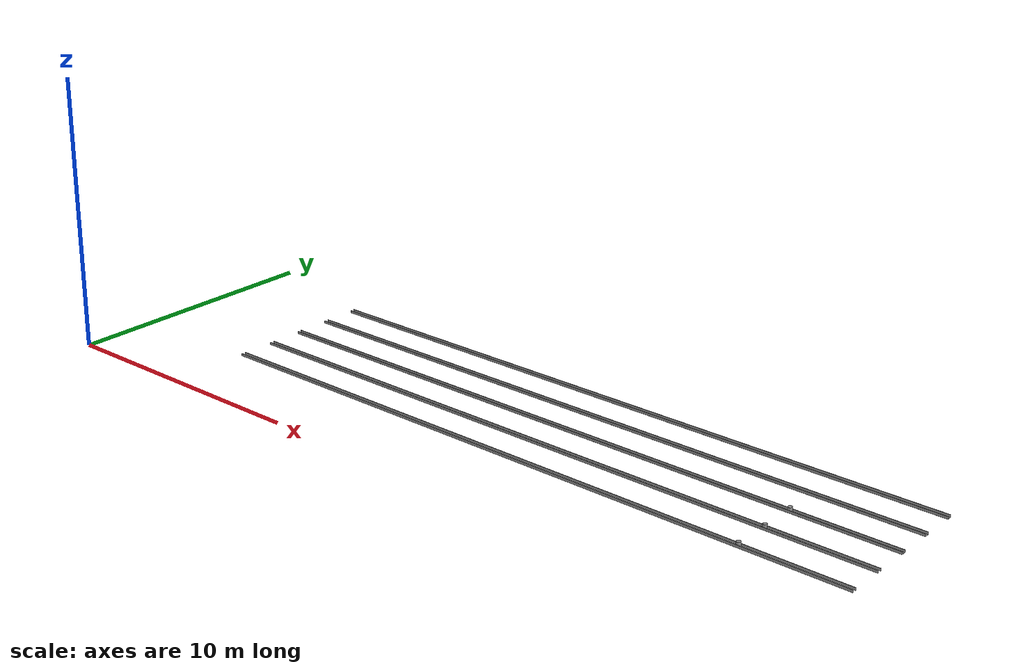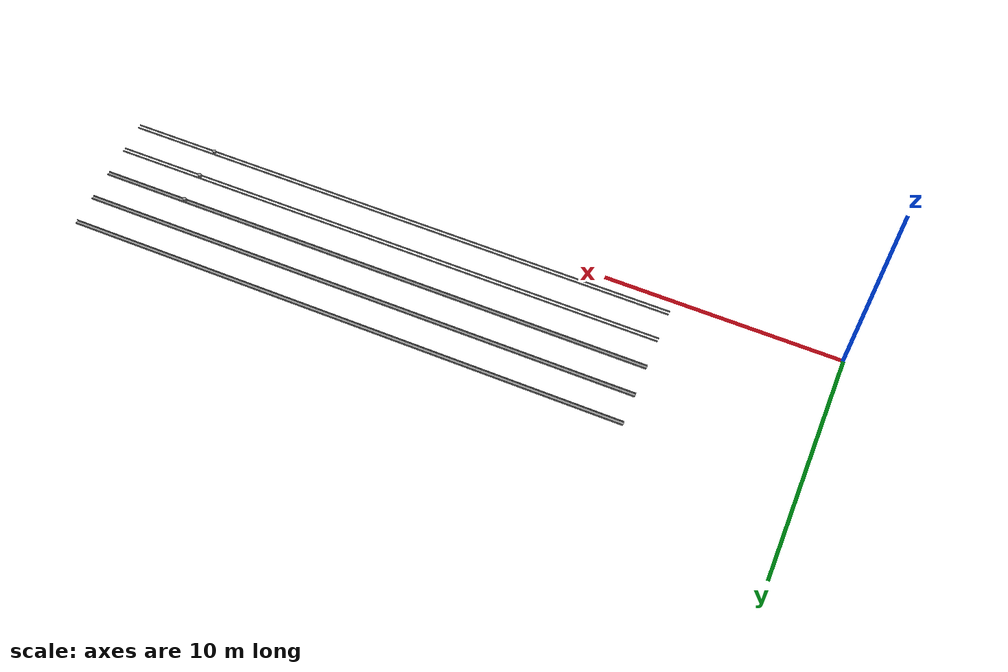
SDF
<sdf version="1.4">
 <world name="default">
  <model name="tray_7">
   <static>1</static>
   <link name="link_0">
    <collision name="collision"><geometry><box><size>23.620 0.15 0.005</size></box></geometry></collision>
    <visual name="visual">
     <geometry><box><size>23.620 0.15 0.005</size></box></geometry>
     <material>
      <script><uri>file://media/materials/scripts/gazebo.material</uri><name>Gazebo/Grey</name></script>
      <emissive>0 0 0 1</emissive>
      <shader type="vertex"><normal_map>__default__</normal_map></shader>
      <specular>0.01 0.01 0.01 1</specular>
      <lighting>1</lighting>
      <ambient>0.7 0.7 0.7 1</ambient>
      <diffuse>0.3 0.3 0.3 1</diffuse>
     </material>
    </visual>
    <pose>18.760 3.960 1.14965 0.0 0.0 0.0</pose>
   </link>
  </model>
  <model name="tray_8">
   <static>1</static>
   <link name="link_0">
    <collision name="collision"><geometry><box><size>23.620 0.15 0.005</size></box></geometry></collision>
    <visual name="visual">
     <geometry><box><size>23.620 0.15 0.005</size></box></geometry>
     <material>
      <script><uri>file://media/materials/scripts/gazebo.material</uri><name>Gazebo/Grey</name></script>
      <emissive>0 0 0 1</emissive>
      <shader type="vertex"><normal_map>__default__</normal_map></shader>
      <specular>0.01 0.01 0.01 1</specular>
      <lighting>1</lighting>
      <ambient>0.7 0.7 0.7 1</ambient>
      <diffuse>0.3 0.3 0.3 1</diffuse>
     </material>
    </visual>
    <pose>18.760 5.280 1.14965 0.0 0.0 0.0</pose>
   </link>
  </model>
  <model name="tray_9">
   <static>1</static>
   <link name="link_0">
    <collision name="collision"><geometry><box><size>23.620 0.15 0.005</size></box></geometry></collision>
    <visual name="visual">
     <geometry><box><size>23.620 0.15 0.005</size></box></geometry>
     <material>
      <script><uri>file://media/materials/scripts/gazebo.material</uri><name>Gazebo/Grey</name></script>
      <emissive>0 0 0 1</emissive>
      <shader type="vertex"><normal_map>__default__</normal_map></shader>
      <specular>0.01 0.01 0.01 1</specular>
      <lighting>1</lighting>
      <ambient>0.7 0.7 0.7 1</ambient>
      <diffuse>0.3 0.3 0.3 1</diffuse>
     </material>
    </visual>
    <pose>18.760 6.600 1.14965 0.0 0.0 0.0</pose>
   </link>
  </model>
  <model name="tray_p2_10">
   <static>1</static>
   <link name="link_0">
    <collision name="collision"><geometry><box><size>23.62 0.085 0.005</size></box></geometry></collision>
    <visual name="visual">
     <geometry><box><size>23.62 0.085 0.005</size></box></geometry>
     <material>
      <script><uri>file://media/materials/scripts/gazebo.material</uri><name>Gazebo/Grey</name></script>
      <emissive>0 0 0 1</emissive>
      <shader type="vertex"><normal_map>__default__</normal_map></shader>
      <specular>0.01 0.01 0.01 1</specular>
      <lighting>1</lighting>
      <ambient>0.7 0.7 0.7 1</ambient>
      <diffuse>0.3 0.3 0.3 1</diffuse>
     </material>
    </visual>
    <pose>18.760 1.245 1.19165 1.5707 0.0 0.0</pose>
   </link>
  </model>
  <model name="tray_p2_11">
   <static>1</static>
   <link name="link_0">
    <collision name="collision"><geometry><box><size>23.62 0.085 0.005</size></box></geometry></collision>
    <visual name="visual">
     <geometry><box><size>23.62 0.085 0.005</size></box></geometry>
     <material>
      <script><uri>file://media/materials/scripts/gazebo.material</uri><name>Gazebo/Grey</name></script>
      <emissive>0 0 0 1</emissive>
      <shader type="vertex"><normal_map>__default__</normal_map></shader>
      <specular>0.01 0.01 0.01 1</specular>
      <lighting>1</lighting>
      <ambient>0.7 0.7 0.7 1</ambient>
      <diffuse>0.3 0.3 0.3 1</diffuse>
     </material>
    </visual>
    <pose>18.760 2.565 1.19165 1.5707 0.0 0.0</pose>
   </link>
  </model>
  <model name="tray_p2_12">
   <static>1</static>
   <link name="link_0">
    <collision name="collision"><geometry><box><size>23.62 0.085 0.005</size></box></geometry></collision>
    <visual name="visual">
     <geometry><box><size>23.62 0.085 0.005</size></box></geometry>
     <material>
      <script><uri>file://media/materials/scripts/gazebo.material</uri><name>Gazebo/Grey</name></script>
      <emissive>0 0 0 1</emissive>
      <shader type="vertex"><normal_map>__default__</normal_map></shader>
      <specular>0.01 0.01 0.01 1</specular>
      <lighting>1</lighting>
      <ambient>0.7 0.7 0.7 1</ambient>
      <diffuse>0.3 0.3 0.3 1</diffuse>
     </material>
    </visual>
    <pose>18.760 3.885 1.19165 1.5707 0.0 0.0</pose>
   </link>
  </model>
  <model name="tray_p2_13">
   <static>1</static>
   <link name="link_0">
    <collision name="collision"><geometry><box><size>23.62 0.085 0.005</size></box></geometry></collision>
    <visual name="visual">
     <geometry><box><size>23.62 0.085 0.005</size></box></geometry>
     <material>
      <script><uri>file://media/materials/scripts/gazebo.material</uri><name>Gazebo/Grey</name></script>
      <emissive>0 0 0 1</emissive>
      <shader type="vertex"><normal_map>__default__</normal_map></shader>
      <specular>0.01 0.01 0.01 1</specular>
      <lighting>1</lighting>
      <ambient>0.7 0.7 0.7 1</ambient>
      <diffuse>0.3 0.3 0.3 1</diffuse>
     </material>
    </visual>
    <pose>18.760 5.205 1.19165 1.5707 0.0 0.0</pose>
   </link>
  </model>
  <model name="tray_p2_14">
   <static>1</static>
   <link name="link_0">
    <collision name="collision"><geometry><box><size>23.62 0.085 0.005</size></box></geometry></collision>
    <visual name="visual">
     <geometry><box><size>23.62 0.085 0.005</size></box></geometry>
     <material>
      <script><uri>file://media/materials/scripts/gazebo.material</uri><name>Gazebo/Grey</name></script>
      <emissive>0 0 0 1</emissive>
      <shader type="vertex"><normal_map>__default__</normal_map></shader>
      <specular>0.01 0.01 0.01 1</specular>
      <lighting>1</lighting>
      <ambient>0.7 0.7 0.7 1</ambient>
      <diffuse>0.3 0.3 0.3 1</diffuse>
     </material>
    </visual>
    <pose>18.760 6.525 1.19165 1.5707 0.0 0.0</pose>
   </link>
  </model>
  <model name="tray_p2_15">
   <static>1</static>
   <link name="link_0">
    <collision name="collision"><geometry><box><size>23.62 0.085 0.005</size></box></geometry></collision>
    <visual name="visual">
     <geometry><box><size>23.62 0.085 0.005</size></box></geometry>
     <material>
      <script><uri>file://media/materials/scripts/gazebo.material</uri><name>Gazebo/Grey</name></script>
      <emissive>0 0 0 1</emissive>
      <shader type="vertex"><normal_map>__default__</normal_map></shader>
      <specular>0.01 0.01 0.01 1</specular>
      <lighting>1</lighting>
      <ambient>0.7 0.7 0.7 1</ambient>
      <diffuse>0.3 0.3 0.3 1</diffuse>
     </material>
    </visual>
    <pose>18.760 1.395 1.19165 1.5707 0.0 0.0</pose>
   </link>
  </model>
  <model name="tray_p2_16">
   <static>1</static>
   <link name="link_0">
    <collision name="collision"><geometry><box><size>23.62 0.085 0.005</size></box></geometry></collision>
    <visual name="visual">
     <geometry><box><size>23.62 0.085 0.005</size></box></geometry>
     <material>
      <script><uri>file://media/materials/scripts/gazebo.material</uri><name>Gazebo/Grey</name></script>
      <emissive>0 0 0 1</emissive>
      <shader type="vertex"><normal_map>__default__</normal_map></shader>
      <specular>0.01 0.01 0.01 1</specular>
      <lighting>1</lighting>
      <ambient>0.7 0.7 0.7 1</ambient>
      <diffuse>0.3 0.3 0.3 1</diffuse>
     </material>
    </visual>
    <pose>18.760 2.715 1.19165 1.5707 0.0 0.0</pose>
   </link>
  </model>
  <model name="tray_p2_17">
   <static>1</static>
   <link name="link_0">
    <collision name="collision"><geometry><box><size>23.62 0.085 0.005</size></box></geometry></collision>
    <visual name="visual">
     <geometry><box><size>23.62 0.085 0.005</size></box></geometry>
     <material>
      <script><uri>file://media/materials/scripts/gazebo.material</uri><name>Gazebo/Grey</name></script>
      <emissive>0 0 0 1</emissive>
      <shader type="vertex"><normal_map>__default__</normal_map></shader>
      <specular>0.01 0.01 0.01 1</specular>
      <lighting>1</lighting>
      <ambient>0.7 0.7 0.7 1</ambient>
      <diffuse>0.3 0.3 0.3 1</diffuse>
     </material>
    </visual>
    <pose>18.760 4.035 1.19165 1.5707 0.0 0.0</pose>
   </link>
  </model>
  <model name="tray_p2_18">
   <static>1</static>
   <link name="link_0">
    <collision name="collision"><geometry><box><size>23.62 0.085 0.005</size></box></geometry></collision>
    <visual name="visual">
     <geometry><box><size>23.62 0.085 0.005</size></box></geometry>
     <material>
      <script><uri>file://media/materials/scripts/gazebo.material</uri><name>Gazebo/Grey</name></script>
      <emissive>0 0 0 1</emissive>
      <shader type="vertex"><normal_map>__default__</normal_map></shader>
      <specular>0.01 0.01 0.01 1</specular>
      <lighting>1</lighting>
      <ambient>0.7 0.7 0.7 1</ambient>
      <diffuse>0.3 0.3 0.3 1</diffuse>
     </material>
    </visual>
    <pose>18.760 5.355 1.19165 1.5707 0.0 0.0</pose>
   </link>
  </model>
  <model name="tray_p2_19">
   <static>1</static>
   <link name="link_0">
    <collision name="collision"><geometry><box><size>23.62 0.085 0.005</size></box></geometry></collision>
    <visual name="visual">
     <geometry><box><size>23.62 0.085 0.005</size></box></geometry>
     <material>
      <script><uri>file://media/materials/scripts/gazebo.material</uri><name>Gazebo/Grey</name></script>
      <emissive>0 0 0 1</emissive>
      <shader type="vertex"><normal_map>__default__</normal_map></shader>
      <specular>0.01 0.01 0.01 1</specular>
      <lighting>1</lighting>
      <ambient>0.7 0.7 0.7 1</ambient>
      <diffuse>0.3 0.3 0.3 1</diffuse>
     </material>
    </visual>
    <pose>18.760 6.675 1.19165 1.5707 0.0 0.0</pose>
   </link>
  </model>
  <model name="pot1_40">
   <static>1</static>
   <link name="link_0">
    <collision name="collision">
     <geometry><cylinder><length>0.17</length><radius>0.07</radius></cylinder></geometry>
    </collision>
    <visual name="visual">
     <geometry><cylinder><length>0.17</length><radius>0.07</radius></cylinder></geometry>
     <material>
      <script><uri>file://media/materials/scripts/gazebo.material</uri><name>Gazebo/Grey</name></script>
      <emissive>0 0 0 1</emissive>
      <shader type="vertex"><normal_map>__default__</normal_map></shader>
      <specular>0.01 0.01 0.01 1</specular>
      <lighting>1</lighting>
      <ambient>0.1 0.1 0.1 1</ambient>
      <diffuse>0.05 0.05 0.05 1</diffuse>
     </material>
    </visual>
    <pose>27.000 1.320 1.23465 0.0 0.0 0.0</pose>
   </link>
  </model>
  <model name="pot1_41">
   <static>1</static>
   <link name="link_0">
    <collision name="collision">
     <geometry><cylinder><length>0.17</length><radius>0.07</radius></cylinder></geometry>
    </collision>
    <visual name="visual">
     <geometry><cylinder><length>0.17</length><radius>0.07</radius></cylinder></geometry>
     <material>
      <script><uri>file://media/materials/scripts/gazebo.material</uri><name>Gazebo/Grey</name></script>
      <emissive>0 0 0 1</emissive>
      <shader type="vertex"><normal_map>__default__</normal_map></shader>
      <specular>0.01 0.01 0.01 1</specular>
      <lighting>1</lighting>
      <ambient>0.1 0.1 0.1 1</ambient>
      <diffuse>0.05 0.05 0.05 1</diffuse>
     </material>
    </visual>
    <pose>27.000 2.640 1.23465 0.0 0.0 0.0</pose>
   </link>
  </model>
  <model name="pot1_42">
   <static>1</static>
   <link name="link_0">
    <collision name="collision">
     <geometry><cylinder><length>0.17</length><radius>0.07</radius></cylinder></geometry>
    </collision>
    <visual name="visual">
     <geometry><cylinder><length>0.17</length><radius>0.07</radius></cylinder></geometry>
     <material>
      <script><uri>file://media/materials/scripts/gazebo.material</uri><name>Gazebo/Grey</name></script>
      <emissive>0 0 0 1</emissive>
      <shader type="vertex"><normal_map>__default__</normal_map></shader>
      <specular>0.01 0.01 0.01 1</specular>
      <lighting>1</lighting>
      <ambient>0.1 0.1 0.1 1</ambient>
      <diffuse>0.05 0.05 0.05 1</diffuse>
     </material>
    </visual>
    <pose>27.000 3.960 1.23465 0.0 0.0 0.0</pose>
   </link>
  </model>
  <include><uri>model://sun</uri></include>
 </world>
</sdf>
